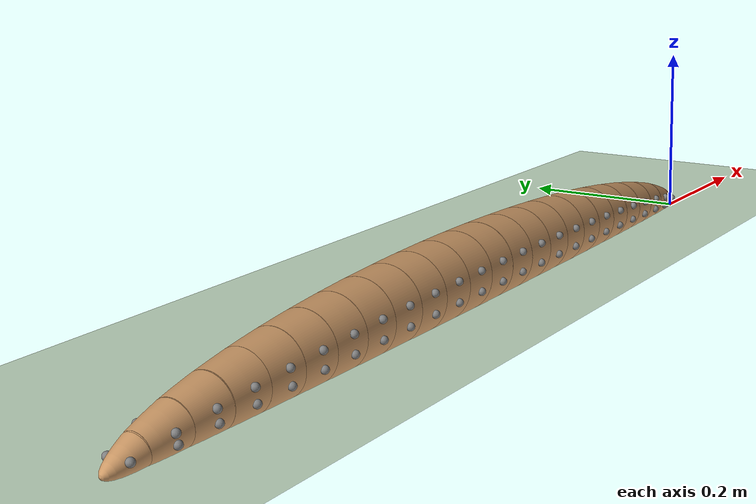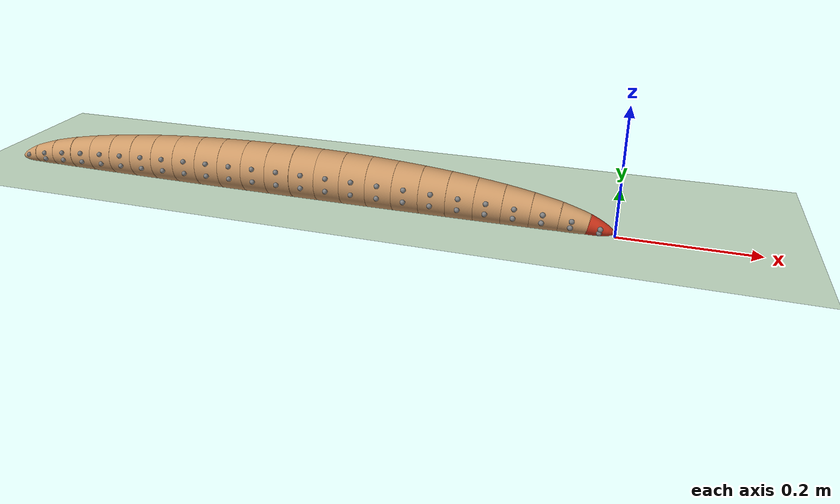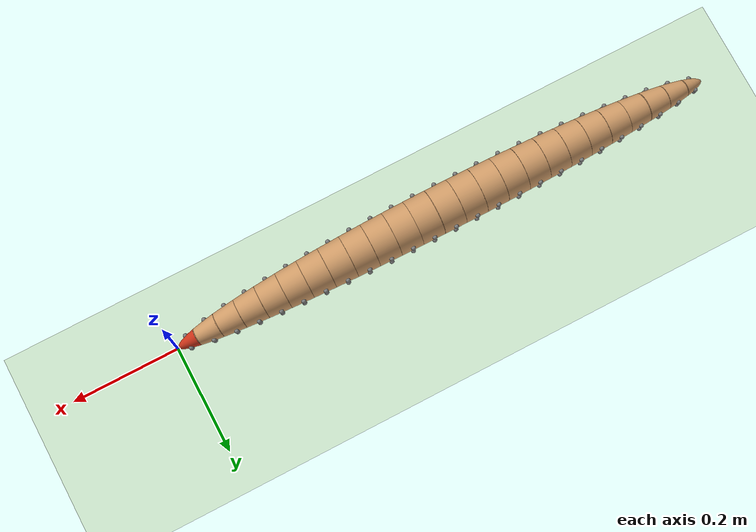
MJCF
<?xml version='1.0' encoding='utf-8'?>
<mujoco model="celegans">
  <visual>
    <quality shadowsize="2048" />
    <global offwidth="1920" offheight="1200" elevation="-20" azimuth="120" />
  </visual>
  <compiler angle="degree" coordinate="local" inertiafromgeom="true" meshdir="./meshes" />
  <option density="1.2" solver="CG" iterations="6" ls_iterations="6" timestep="0.002" viscosity="0.1" cone="pyramidal" />
  <default>
    <geom conaffinity="1" condim="1" contype="1" material="geom" rgba="0.8 0.6 .4 1" />
    <joint armature="0.1" />
    <site type="sphere" size="0.00416572" />
    <muscle ctrllimited="true" ctrlrange="0 1" />
  </default>
  <asset>
    <texture builtin="gradient" height="100" rgb1="1 1 1" rgb2="0 0 0" type="skybox" width="100" />
    <texture builtin="flat" height="1278" mark="cross" markrgb="1 1 1" name="texgeom" random="0.01" rgb1="0.8 0.6 0.4" rgb2="0.8 0.6 0.4" type="cube" width="127" />
    <texture builtin="checker" height="100" name="texplane" rgb1="0 0 0" rgb2="0.8 0.8 0.8" type="2d" width="100" />
    <material name="MatPlane" reflectance="0.5" shininess="1" specular="1" texrepeat="30 30" texture="texplane" />
    <material name="geom" texture="texgeom" texuniform="true" />
    <mesh name="ellipsoid1" file="Ellipsoid.001.stl" refpos="1.25 0 0" refquat="1.0 0.0 0 0" scale="0.416572 0.416572 0.416572" />
    <mesh name="ellipsoid2" file="Ellipsoid.002.stl" refpos="1.1574074074074074 0 0" refquat="1.0 0.0 0 0" scale="0.416572 0.416572 0.416572" />
    <mesh name="ellipsoid3" file="Ellipsoid.003.stl" refpos="1.0567632850241546 0 0" refquat="0.9393937941349282 0.3428400494994482 0 0" scale="0.416572 0.416572 0.416572" />
    <mesh name="ellipsoid4" file="Ellipsoid.004.stl" refpos="0.9561191626409018 0 0" refquat="1.0 0.0 0 0" scale="0.416572 0.416572 0.416572" />
    <mesh name="ellipsoid5" file="Ellipsoid.005.stl" refpos="0.855475040257649 0 0" refquat="1.0 0.0 0 0" scale="0.416572 0.416572 0.416572" />
    <mesh name="ellipsoid6" file="Ellipsoid.006.stl" refpos="0.7548309178743962 0 0" refquat="1.0 0.0 0 0" scale="0.416572 0.416572 0.416572" />
    <mesh name="ellipsoid7" file="Ellipsoid.007.stl" refpos="0.6541867954911433 0 0" refquat="0.9238795325112867 0.3826834323650898 0 0" scale="0.416572 0.416572 0.416572" />
    <mesh name="ellipsoid8" file="Ellipsoid.008.stl" refpos="0.5535426731078905 0 0" refquat="0.9238795325112867 0.3826834323650898 0 0" scale="0.416572 0.416572 0.416572" />
    <mesh name="ellipsoid9" file="Ellipsoid.009.stl" refpos="0.45289855072463775 0 0" refquat="0.984807753012208 0.17364817766693033 0 0" scale="0.416572 0.416572 0.416572" />
    <mesh name="ellipsoid10" file="Ellipsoid.010.stl" refpos="0.35225442834138493 0 0" refquat="0.9271838545667874 0.374606593415912 0 0" scale="0.416572 0.416572 0.416572" />
    <mesh name="ellipsoid11" file="Ellipsoid.011.stl" refpos="0.25161030595813205 0 0" refquat="1.0 0.0 0 0" scale="0.416572 0.416572 0.416572" />
    <mesh name="ellipsoid12" file="Ellipsoid.012.stl" refpos="0.15096618357487912 0 0" refquat="0.9238795325112867 0.3826834323650898 0 0" scale="0.416572 0.416572 0.416572" />
    <mesh name="ellipsoid13" file="Ellipsoid.013.stl" refpos="0.05032206119162645 0 0" refquat="0.9238795325112867 0.3826834323650898 0 0" scale="0.416572 0.416572 0.416572" />
    <mesh name="ellipsoid14" file="Ellipsoid.014.stl" refpos="-0.05032206119162645 0 0" refquat="0.9238795325112867 0.3826834323650898 0 0" scale="0.416572 0.416572 0.416572" />
    <mesh name="ellipsoid15" file="Ellipsoid.015.stl" refpos="-0.15096618357487912 0 0" refquat="1.0 0.0 0 0" scale="0.416572 0.416572 0.416572" />
    <mesh name="ellipsoid16" file="Ellipsoid.016.stl" refpos="-0.25161030595813205 0 0" refquat="0.9238795325112867 0.3826834323650898 0 0" scale="0.416572 0.416572 0.416572" />
    <mesh name="ellipsoid17" file="Ellipsoid.017.stl" refpos="-0.35225442834138493 0 0" refquat="1.0 0.0 0 0" scale="0.416572 0.416572 0.416572" />
    <mesh name="ellipsoid18" file="Ellipsoid.018.stl" refpos="-0.45289855072463764 0 0" refquat="0.9238795325112867 0.3826834323650898 0 0" scale="0.416572 0.416572 0.416572" />
    <mesh name="ellipsoid19" file="Ellipsoid.019.stl" refpos="-0.5535426731078905 0 0" refquat="0.9238795325112867 0.3826834323650898 0 0" scale="0.416572 0.416572 0.416572" />
    <mesh name="ellipsoid20" file="Ellipsoid.020.stl" refpos="-0.6541867954911432 0 0" refquat="1.0 0.0 0 0" scale="0.416572 0.416572 0.416572" />
    <mesh name="ellipsoid21" file="Ellipsoid.021.stl" refpos="-0.7548309178743962 0 0" refquat="0.9238795325112867 0.3826834323650898 0 0" scale="0.416572 0.416572 0.416572" />
    <mesh name="ellipsoid22" file="Ellipsoid.022.stl" refpos="-0.855475040257649 0 0" refquat="1.0 0.0 0 0" scale="0.416572 0.416572 0.416572" />
    <mesh name="ellipsoid23" file="Ellipsoid.023.stl" refpos="-0.9561191626409019 0 0" refquat="0.9222009716704518 0.3867109616368206 0 0" scale="0.416572 0.416572 0.416572" />
    <mesh name="ellipsoid24" file="Ellipsoid.024.stl" refpos="-1.0567632850241548 0 0" refquat="0.9238795325112867 0.3826834323650898 0 0" scale="0.416572 0.416572 0.416572" />
    <mesh name="ellipsoid25" file="Ellipsoid.025.stl" refpos="-1.1574074074074072 0 0" refquat="1.0 0.0 0 0" scale="0.416572 0.416572 0.416572" />
  </asset>
  <worldbody>
    <camera name="fixedcam" mode="fixed" pos="0 0 20.8286" xyaxes="1 0 0 0 1 0" />
     <camera name="fixedcam2" mode="trackcom" pos="4.16572e-05 4.16572e-05 0.000416572" xyaxes="1 0 0 0 1 0" />
    <light cutoff="100" diffuse="1 1 1" dir="-0 0 -0.541544" directional="true" exponent="1" pos="0 0 0.541544" specular=".1 .1 .1" />
    <body name="floor">
      <geom conaffinity="1" condim="3" material="MatPlane" name="floor" pos="0 0 0" rgba="0.8 0.9 0.8 1" size="16.6629 16.6629 0.0416572" type="plane" />
    </body>
    <body name="torso1_body" pos="-0.00190215 -0 0.00647716">
      <camera name="track" mode="trackcom" pos="-0.520715 0 2.08286" xyaxes="1 0 0 0 1 0" />
      <camera name="close_profile" mode="trackcom" pos="0.208286 -0.208286 0.208286" xyaxes="1 1 0 -1 1 2" />
      <camera name="back" mode="trackcom" pos="-0.416572 0 0.208286" xyaxes="0 -1 0 1 0 2" />
      <camera name="side" mode="trackcom" pos="0 -0.416572 0.208286" xyaxes="1 0 0 0 1 2" />
      <camera name="side_alt" mode="trackcom" pos="0.208286 -0.233697 0.0828978" xyaxes="0.766 0.643 0.000 -0.162 0.192 0.968" />
      <camera name="top" mode="trackcom" fovy="100.0" pos="0 0 0.416572" zaxis="0 -0.2 1" />
      <geom density="1000" type="mesh" rgba="0.8 0.2 0.1 1" name="torso1" mesh="ellipsoid1" quat="0.99267578125 0.0 0.11907958984375 0.0" />
      <freejoint name="root" />
      <site name="sidesite1_central" pos="0 0 0" size="0.00416572" rgba="0.8 0.2 0.1 1.0" />
      <site name="site_anterior_dbwml1" pos="-0.0209506 0.011664 0.00198955" />
      <site name="site_anterior_dbwmr1" pos="-0.0195141 0.011664 0.00786285" />
      <site name="site_anterior_vbwml1" pos="-0.0209506 -0.011664 0.00198955" />
      <site name="site_anterior_vbwmr1" pos="-0.0195141 -0.011664 0.00786285" />
      <body name="torso2_body" pos="-0.0374264 0 0.00937567">
        <geom density="1000" type="mesh" name="torso2" mesh="ellipsoid2" quat="0.9970703125 0.0 0.07611083984375 0.0" />
        <joint axis="0 0 1" limited="true" name="motor1_rot" pos="-0.00305106 0 0.000470372" range="-70 70" type="hinge" />
        <geom name="geom2" pos="-0.00305106 0 0.000470372" size="0.0160339" type="sphere" density="0" />
        <site name="sidesite2_central" pos="-0.00305106 0 0.000470372" rgba="0.8 0.2 0.1 1.0" />
        <site name="sidesite2_dorsal" pos="-0.00305106 0.0160308 0.000470372" rgba="0.8 0.2 0.1 0" />
        <site name="sidesite2_ventral" pos="-0.00305106 -0.0160308 0.000470372" rgba="0.8 0.2 0.1 0" />
        <site name="site_posterior_dbwml1" pos="-0.0244339 0.0197811 -0.00142383" />
        <site name="site_posterior_dbwmr1" pos="-0.0228576 0.0197811 0.00869553" />
        <site name="site_posterior_vbwml1" pos="-0.0244339 -0.0197811 -0.00142383" />
        <site name="site_posterior_vbwmr1" pos="-0.0228576 -0.0197811 0.00869553" />
        <site name="site_anterior_dbwml2" pos="-0.0244339 0.0197811 -0.00142383" />
        <site name="site_anterior_dbwmr2" pos="-0.0228576 0.0197811 0.00869553" />
        <site name="site_anterior_vbwml2" pos="-0.0244339 -0.0197811 -0.00142383" />
        <site name="site_anterior_vbwmr2" pos="-0.0228576 -0.0197811 0.00869553" />
        <body name="torso3_body" pos="-0.0414182 0 0.00649622">
          <geom density="1000" type="mesh" name="torso3" mesh="ellipsoid3" quat="0.99853515625 0.0 0.052459716796875 0.0" />
          <joint axis="0 0 1" limited="true" name="motor2_rot" pos="-0.00279681 0 0.000305106" range="-100 100" type="hinge" />
          <geom name="geom3" pos="-0.00279681 0 0.000305106" size="0.0224275" type="sphere" density="0" />
          <site name="sidesite3_central" pos="-0.00279681 0 0.000305106" rgba="0.8 0.2 0.1 1.0" />
          <site name="sidesite3_dorsal" pos="-0.00279681 0.0224253 0.000305106" rgba="0.8 0.2 0.1 0" />
          <site name="sidesite3_ventral" pos="-0.00279681 -0.0224253 0.000305106" rgba="0.8 0.2 0.1 0" />
          <site name="site_posterior_dbwml2" pos="-0.0242051 0.0249933 -0.00395367" />
          <site name="site_posterior_dbwmr2" pos="-0.0228321 0.0249933 0.00892436" />
          <site name="site_posterior_vbwml2" pos="-0.0242051 -0.0249933 -0.00395367" />
          <site name="site_posterior_vbwmr2" pos="-0.0228321 -0.0249933 0.00892436" />
          <site name="site_anterior_dbwml3" pos="-0.0242051 0.0249933 -0.00395367" />
          <site name="site_anterior_dbwmr3" pos="-0.0228321 0.0249933 0.00892436" />
          <site name="site_anterior_vbwml3" pos="-0.0242051 -0.0249933 -0.00395367" />
          <site name="site_anterior_vbwmr3" pos="-0.0228321 -0.0249933 0.00892436" />
          <body name="torso4_body" pos="-0.0416979 0 0.00444947">
            <geom density="1000" type="mesh" name="torso4" mesh="ellipsoid4" quat="0.9990234375 0.0 0.0419921875 0.0" />
            <joint axis="0 0 1" limited="true" name="rot4" pos="-0.00254255 0 0.000203404" range="-100 100" type="hinge" />
            <geom name="geom4" pos="-0.00254255 0 0.000203404" size="0.0269545" type="sphere" density="0" />
            <site name="sidesite4_central" pos="-0.00254255 0 0.000203404" rgba="0.8 0.2 0.1 1.0" />
            <site name="sidesite4_dorsal" pos="-0.00254255 0.0269511 0.000203404" rgba="0.8 0.2 0.1 0" />
            <site name="sidesite4_ventral" pos="-0.00254255 -0.0269511 0.000203404" rgba="0.8 0.2 0.1 0" />
            <site name="site_posterior_dbwml3" pos="-0.0239 0.0289088 -0.00549192" />
            <site name="site_posterior_dbwmr3" pos="-0.0226796 0.0289088 0.00940745" />
            <site name="site_posterior_vbwml3" pos="-0.0239 -0.0289088 -0.00549192" />
            <site name="site_posterior_vbwmr3" pos="-0.0226796 -0.0289088 0.00940745" />
            <site name="site_anterior_dbwml4" pos="-0.0239 0.0289088 -0.00549192" />
            <site name="site_anterior_dbwmr4" pos="-0.0226796 0.0289088 0.00940745" />
            <site name="site_anterior_vbwml4" pos="-0.0239 -0.0289088 -0.00549192" />
            <site name="site_anterior_vbwmr4" pos="-0.0226796 -0.0289088 0.00940745" />
            <body name="torso5_body" pos="-0.0417996 0 0.00355958">
              <geom density="1000" type="mesh" name="torso5" mesh="ellipsoid5" quat="0.99951171875 0.0 0.033447265625 0.0" />
              <joint axis="0 0 1" limited="true" name="rot5" pos="-0.00223745 0 0.000152553" range="-100 100" type="hinge" />
              <geom name="geom5" pos="-0.00223745 0 0.000152553" size="0.0304588" type="sphere" density="0" />
              <site name="sidesite5_central" pos="-0.00223745 0 0.000152553" rgba="0.8 0.2 0.1 1.0" />
              <site name="sidesite5_dorsal" pos="-0.00223745 0.0304598 0.000152553" rgba="0.8 0.2 0.1 0" />
              <site name="sidesite5_ventral" pos="-0.00223745 -0.0304598 0.000152553" rgba="0.8 0.2 0.1 0" />
              <site name="site_posterior_dbwml4" pos="-0.0235949 0.0320108 -0.00672505" />
              <site name="site_posterior_dbwmr4" pos="-0.0224762 0.0320108 0.00981426" />
              <site name="site_posterior_vbwml4" pos="-0.0235949 -0.0320108 -0.00672505" />
              <site name="site_posterior_vbwmr4" pos="-0.0224762 -0.0320108 0.00981426" />
              <site name="site_anterior_dbwml5" pos="-0.0235949 0.0320108 -0.00672505" />
              <site name="site_anterior_dbwmr5" pos="-0.0224762 0.0320108 0.00981426" />
              <site name="site_anterior_vbwml5" pos="-0.0235949 -0.0320108 -0.00672505" />
              <site name="site_anterior_vbwmr5" pos="-0.0224762 -0.0320108 0.00981426" />
              <body name="torso6_body" pos="-0.0417996 0 0.00282223">
                <geom density="1000" type="mesh" name="torso6" mesh="ellipsoid6" quat="0.99951171875 0.0 0.0270233154296875 0.0" />
                <joint axis="0 0 1" limited="true" name="rot6" pos="-0.00203404 0 0.000101702" range="-100 100" type="hinge" />
                <geom name="geom6" pos="-0.00203404 0 0.000101702" size="0.0332653" type="sphere" density="0" />
                <site name="sidesite6_central" pos="-0.00203404 0 0.000101702" rgba="0.8 0.2 0.1 1.0" />
                <site name="sidesite6_dorsal" pos="-0.00203404 0.0332566 0.000101702" rgba="0.8 0.2 0.1 0" />
                <site name="sidesite6_ventral" pos="-0.00203404 -0.0332566 0.000101702" rgba="0.8 0.2 0.1 0" />
                <site name="site_posterior_dbwml5" pos="-0.0231881 0.0345025 -0.00767851" />
                <site name="site_posterior_dbwmr5" pos="-0.0223745 0.0345025 0.0101448" />
                <site name="site_posterior_vbwml5" pos="-0.0231881 -0.0345025 -0.00767851" />
                <site name="site_posterior_vbwmr5" pos="-0.0223745 -0.0345025 0.0101448" />
                <site name="site_anterior_dbwml6" pos="-0.0231881 0.0345025 -0.00767851" />
                <site name="site_anterior_dbwmr6" pos="-0.0223745 0.0345025 0.0101448" />
                <site name="site_anterior_vbwml6" pos="-0.0231881 -0.0345025 -0.00767851" />
                <site name="site_anterior_vbwmr6" pos="-0.0223745 -0.0345025 0.0101448" />
                <body name="torso7_body" pos="-0.0419013 0 0.0022883">
                  <geom density="1000" type="mesh" name="torso7" mesh="ellipsoid7" quat="1.0 0.0 0.0220489501953125 0.0" />
                  <joint axis="0 0 1" limited="true" name="rot7" pos="-0.00162723 0 7.62766e-05" range="-100 100" type="hinge" />
                  <geom name="geom7" pos="-0.00162723 0 7.62766e-05" size="0.0355397" type="sphere" density="0" />
                  <site name="sidesite7_central" pos="-0.00162723 0 7.62766e-05" rgba="0.8 0.2 0.1 1.0" />
                  <site name="sidesite7_dorsal" pos="-0.00162723 0.0355449 7.62766e-05" rgba="0.8 0.2 0.1 0" />
                  <site name="sidesite7_ventral" pos="-0.00162723 -0.0355449 7.62766e-05" rgba="0.8 0.2 0.1 0" />
                  <site name="site_posterior_dbwml6" pos="-0.0229847 0.0365365 -0.0084667" />
                  <site name="site_posterior_dbwmr6" pos="-0.0221711 0.0365365 0.0104499" />
                  <site name="site_posterior_vbwml6" pos="-0.0229847 -0.0365365 -0.0084667" />
                  <site name="site_posterior_vbwmr6" pos="-0.0221711 -0.0365365 0.0104499" />
                  <site name="site_anterior_dbwml7" pos="-0.0229847 0.0365365 -0.0084667" />
                  <site name="site_anterior_dbwmr7" pos="-0.0221711 0.0365365 0.0104499" />
                  <site name="site_anterior_vbwml7" pos="-0.0229847 -0.0365365 -0.0084667" />
                  <site name="site_anterior_vbwmr7" pos="-0.0221711 -0.0365365 0.0104499" />
                  <body name="torso8_body" pos="-0.0419013 0 0.00185606">
                    <geom density="1000" type="mesh" name="torso8" mesh="ellipsoid8" quat="1.0 0.0 0.0172576904296875 0.0" />
                    <joint axis="0 0 1" limited="true" name="rot8" pos="-0.00142383 0 5.08511e-05" range="-100 100" type="hinge" />
                    <geom name="geom8" pos="-0.00142383 0 5.08511e-05" size="0.0373791" type="sphere" density="0" />
                    <site name="sidesite8_central" pos="-0.00142383 0 5.08511e-05" rgba="0.8 0.2 0.1 1.0" />
                    <site name="sidesite8_dorsal" pos="-0.00142383 0.0373755 5.08511e-05" rgba="0.8 0.2 0.1 0" />
                    <site name="sidesite8_ventral" pos="-0.00142383 -0.0373755 5.08511e-05" rgba="0.8 0.2 0.1 0" />
                    <site name="site_posterior_dbwml7" pos="-0.0225779 0.0381892 -0.00910234" />
                    <site name="site_posterior_dbwmr7" pos="-0.0219677 0.0381892 0.0106533" />
                    <site name="site_posterior_vbwml7" pos="-0.0225779 -0.0381892 -0.00910234" />
                    <site name="site_posterior_vbwmr7" pos="-0.0219677 -0.0381892 0.0106533" />
                    <site name="site_anterior_dbwml8" pos="-0.0225779 0.0381892 -0.00910234" />
                    <site name="site_anterior_dbwmr8" pos="-0.0219677 0.0381892 0.0106533" />
                    <site name="site_anterior_vbwml8" pos="-0.0225779 -0.0381892 -0.00910234" />
                    <site name="site_anterior_vbwmr8" pos="-0.0219677 -0.0381892 0.0106533" />
                    <body name="torso9_body" pos="-0.0419013 0 0.00144926">
                      <geom density="1000" type="mesh" name="torso9" mesh="ellipsoid9" quat="1.0 0.0 0.013885498046875 0.0" />
                      <joint axis="0 0 1" limited="true" name="rot9" pos="-0.00122043 0 5.08511e-05" range="-100 100" type="hinge" />
                      <geom name="geom9" pos="-0.00122043 0 5.08511e-05" size="0.0388455" type="sphere" density="0" />
                      <site name="sidesite9_central" pos="-0.00122043 0 5.08511e-05" rgba="0.8 0.2 0.1 1.0" />
                      <site name="sidesite9_dorsal" pos="-0.00122043 0.0388502 5.08511e-05" rgba="0.8 0.2 0.1 0" />
                      <site name="sidesite9_ventral" pos="-0.00122043 -0.0388502 5.08511e-05" rgba="0.8 0.2 0.1 0" />
                      <site name="site_posterior_dbwml8" pos="-0.0221711 0.0394604 -0.00958543" />
                      <site name="site_posterior_dbwmr8" pos="-0.0217643 0.0394604 0.0108313" />
                      <site name="site_posterior_vbwml8" pos="-0.0221711 -0.0394604 -0.00958543" />
                      <site name="site_posterior_vbwmr8" pos="-0.0217643 -0.0394604 0.0108313" />
                      <site name="site_anterior_dbwml9" pos="-0.0221711 0.0394604 -0.00958543" />
                      <site name="site_anterior_dbwmr9" pos="-0.0217643 0.0394604 0.0108313" />
                      <site name="site_anterior_vbwml9" pos="-0.0221711 -0.0394604 -0.00958543" />
                      <site name="site_anterior_vbwmr9" pos="-0.0217643 -0.0394604 0.0108313" />
                      <body name="torso10_body" pos="-0.0419013 0 0.00116957">
                        <geom density="1000" type="mesh" name="torso10" mesh="ellipsoid10" quat="1.0 0.0 0.0099334716796875 0.0" />
                        <joint axis="0 0 1" limited="true" name="rot10" pos="-0.000813617 0 2.54255e-05" range="-100 100" type="hinge" />
                        <geom name="geom10" pos="-0.000813617 0 2.54255e-05" size="0.03998" type="sphere" density="0" />
                        <site name="sidesite10_central" pos="-0.000813617 0 2.54255e-05" rgba="0.8 0.2 0.1 1.0" />
                        <site name="sidesite10_dorsal" pos="-0.000813617 0.0399689 2.54255e-05" rgba="0.8 0.2 0.1 0" />
                        <site name="sidesite10_ventral" pos="-0.000813617 -0.0399689 2.54255e-05" rgba="0.8 0.2 0.1 0" />
                        <site name="site_posterior_dbwml9" pos="-0.0219677 0.040452 -0.0100177" />
                        <site name="site_posterior_dbwmr9" pos="-0.0215609 0.040452 0.0109076" />
                        <site name="site_posterior_vbwml9" pos="-0.0219677 -0.040452 -0.0100177" />
                        <site name="site_posterior_vbwmr9" pos="-0.0215609 -0.040452 0.0109076" />
                        <site name="site_anterior_dbwml10" pos="-0.0219677 0.040452 -0.0100177" />
                        <site name="site_anterior_dbwmr10" pos="-0.0215609 0.040452 0.0109076" />
                        <site name="site_anterior_vbwml10" pos="-0.0219677 -0.040452 -0.0100177" />
                        <site name="site_anterior_vbwmr10" pos="-0.0215609 -0.040452 0.0109076" />
                        <body name="torso11_body" pos="-0.0419013 0 0.000839043">
                          <geom density="1000" type="mesh" name="torso11" mesh="ellipsoid11" quat="1.0 0.0 0.0063323974609375 0.0" />
                          <joint axis="0 0 1" limited="true" name="rot11" pos="-0.000610213 0 2.54255e-05" range="-100 100" type="hinge" />
                          <geom name="geom11" pos="-0.000610213 0 2.54255e-05" size="0.0408101" type="sphere" density="0" />
                          <site name="sidesite11_central" pos="-0.000610213 0 2.54255e-05" rgba="0.8 0.2 0.1 1.0" />
                          <site name="sidesite11_dorsal" pos="-0.000610213 0.040808 2.54255e-05" rgba="0.8 0.2 0.1 0" />
                          <site name="sidesite11_ventral" pos="-0.000610213 -0.040808 2.54255e-05" rgba="0.8 0.2 0.1 0" />
                          <site name="site_posterior_dbwml10" pos="-0.0217643 0.0411131 -0.0103482" />
                          <site name="site_posterior_dbwmr10" pos="-0.0213575 0.0411131 0.010933" />
                          <site name="site_posterior_vbwml10" pos="-0.0217643 -0.0411131 -0.0103482" />
                          <site name="site_posterior_vbwmr10" pos="-0.0213575 -0.0411131 0.010933" />
                          <site name="site_anterior_dbwml11" pos="-0.0217643 0.0411131 -0.0103482" />
                          <site name="site_anterior_dbwmr11" pos="-0.0213575 0.0411131 0.010933" />
                          <site name="site_anterior_vbwml11" pos="-0.0217643 -0.0411131 -0.0103482" />
                          <site name="site_anterior_vbwmr11" pos="-0.0213575 -0.0411131 0.010933" />
                          <body name="torso12_body" pos="-0.0416979 0 0.000533936">
                            <geom density="1000" type="mesh" name="torso12" mesh="ellipsoid12" quat="1.0 0.0 0.0032062530517578125 0.0" />
                            <joint axis="0 0 1" limited="true" name="rot12" pos="-0.000406809 0 0" range="-100 100" type="hinge" />
                            <geom name="geom12" pos="-0.000406809 0 0" size="0.0413542" type="sphere" density="0" />
                            <site name="sidesite12_central" pos="-0.000406809 0 0" rgba="0.8 0.2 0.1 1.0" />
                            <site name="sidesite12_dorsal" pos="-0.000406809 0.0413419 0" rgba="0.8 0.2 0.1 0" />
                            <site name="sidesite12_ventral" pos="-0.000406809 -0.0413419 0" rgba="0.8 0.2 0.1 0" />
                            <site name="site_posterior_dbwml11" pos="-0.0215609 0.0415199 -0.0106024" />
                            <site name="site_posterior_dbwmr11" pos="-0.021154 0.0415199 0.0109076" />
                            <site name="site_posterior_vbwml11" pos="-0.0215609 -0.0415199 -0.0106024" />
                            <site name="site_posterior_vbwmr11" pos="-0.021154 -0.0415199 0.0109076" />
                            <site name="site_anterior_dbwml12" pos="-0.0215609 0.0415199 -0.0106024" />
                            <site name="site_anterior_dbwmr12" pos="-0.021154 0.0415199 0.0109076" />
                            <site name="site_anterior_vbwml12" pos="-0.0215609 -0.0415199 -0.0106024" />
                            <site name="site_anterior_vbwmr12" pos="-0.021154 -0.0415199 0.0109076" />
                            <body name="torso13_body" pos="-0.0423081 0 0.000279681">
                              <geom density="1000" type="mesh" name="torso13" mesh="ellipsoid13" quat="1.0 0.0 -8.404254913330078e-06 0.0" />
                              <joint axis="0 0 1" limited="true" name="rot13" pos="0 0 0" range="-100 100" type="hinge" />
                              <geom name="geom13" pos="0 0 0" size="0.0416236" type="sphere" density="0" />
                              <site name="sidesite13_central" pos="0 0 0" rgba="0.8 0.2 0.1 1.0" />
                              <site name="sidesite13_dorsal" pos="0 0.0416216 0" rgba="0.8 0.2 0.1 0" />
                              <site name="sidesite13_ventral" pos="0 -0.0416216 0" rgba="0.8 0.2 0.1 0" />
                              <site name="site_posterior_dbwml12" pos="-0.0207472 0.041647 -0.0107804" />
                              <site name="site_posterior_dbwmr12" pos="-0.0207472 0.041647 0.0107804" />
                              <site name="site_posterior_vbwml12" pos="-0.0207472 -0.041647 -0.0107804" />
                              <site name="site_posterior_vbwmr12" pos="-0.0207472 -0.041647 0.0107804" />
                              <site name="site_anterior_dbwml13" pos="-0.0207472 0.041647 -0.0107804" />
                              <site name="site_anterior_dbwmr13" pos="-0.0207472 0.041647 0.0107804" />
                              <site name="site_anterior_vbwml13" pos="-0.0207472 -0.041647 -0.0107804" />
                              <site name="site_anterior_vbwmr13" pos="-0.0207472 -0.041647 0.0107804" />
                              <body name="torso14_body" pos="-0.0419013 0 0">
                                <geom density="1000" type="mesh" name="torso14" mesh="ellipsoid14" quat="1.0 0.0 -0.003177642822265625 0.0" />
                                <joint axis="0 0 1" limited="true" name="rot14" pos="0.000406809 0 0" range="-100 100" type="hinge" />
                                <geom name="geom14" pos="0.000406809 0 0" size="0.0416236" type="sphere" density="0" />
                                <site name="sidesite14_central" pos="0.000406809 0 0" rgba="0.8 0.2 0.1 1.0" />
                                <site name="sidesite14_dorsal" pos="0.000406809 0.0416216 0" rgba="0.8 0.2 0.1 0" />
                                <site name="sidesite14_ventral" pos="0.000406809 -0.0416216 0" rgba="0.8 0.2 0.1 0" />
                                <site name="site_posterior_dbwml13" pos="-0.0203404 0.0415199 -0.0108821" />
                                <site name="site_posterior_dbwmr13" pos="-0.0207472 0.0415199 0.0106279" />
                                <site name="site_posterior_vbwml13" pos="-0.0203404 -0.0415199 -0.0108821" />
                                <site name="site_posterior_vbwmr13" pos="-0.0207472 -0.0415199 0.0106279" />
                                <site name="site_anterior_dbwml14" pos="-0.0203404 0.0415199 -0.0108821" />
                                <site name="site_anterior_dbwmr14" pos="-0.0207472 0.0415199 0.0106279" />
                                <site name="site_anterior_vbwml14" pos="-0.0203404 -0.0415199 -0.0108821" />
                                <site name="site_anterior_vbwmr14" pos="-0.0207472 -0.0415199 0.0106279" />
                                <body name="torso15_body" pos="-0.0419013 0 -0.000279681">
                                  <geom density="1000" type="mesh" name="torso15" mesh="ellipsoid15" quat="1.0 0.0 -0.006458282470703125 0.0" />
                                  <joint axis="0 0 1" limited="true" name="rot15" pos="0.000406809 0 2.54255e-05" range="-100 100" type="hinge" />
                                  <geom name="geom15" pos="0.000406809 0 2.54255e-05" size="0.0413542" type="sphere" density="0" />
                                  <site name="sidesite15_central" pos="0.000406809 0 2.54255e-05" rgba="0.8 0.2 0.1 1.0" />
                                  <site name="sidesite15_dorsal" pos="0.000406809 0.0413419 2.54255e-05" rgba="0.8 0.2 0.1 0" />
                                  <site name="sidesite15_ventral" pos="0.000406809 -0.0413419 2.54255e-05" rgba="0.8 0.2 0.1 0" />
                                  <site name="site_posterior_dbwml14" pos="-0.0203404 0.0411131 -0.0109076" />
                                  <site name="site_posterior_dbwmr14" pos="-0.0203404 0.0411131 0.010399" />
                                  <site name="site_posterior_vbwml14" pos="-0.0203404 -0.0411131 -0.0109076" />
                                  <site name="site_posterior_vbwmr14" pos="-0.0203404 -0.0411131 0.010399" />
                                  <site name="site_anterior_dbwml15" pos="-0.0203404 0.0411131 -0.0109076" />
                                  <site name="site_anterior_dbwmr15" pos="-0.0203404 0.0411131 0.010399" />
                                  <site name="site_anterior_vbwml15" pos="-0.0203404 -0.0411131 -0.0109076" />
                                  <site name="site_anterior_vbwmr15" pos="-0.0203404 -0.0411131 0.010399" />
                                  <body name="torso16_body" pos="-0.0419013 0 -0.000533936">
                                    <geom density="1000" type="mesh" name="torso16" mesh="ellipsoid16" quat="1.0 0.0 -0.00980377197265625 0.0" />
                                    <joint axis="0 0 1" limited="true" name="rot16" pos="0.000813617 0 0" range="-100 100" type="hinge" />
                                    <geom name="geom16" pos="0.000813617 0 0" size="0.0408101" type="sphere" density="0" />
                                    <site name="sidesite16_central" pos="0.000813617 0 0" rgba="0.8 0.2 0.1 1.0" />
                                    <site name="sidesite16_dorsal" pos="0.000813617 0.040808 0" rgba="0.8 0.2 0.1 0" />
                                    <site name="sidesite16_ventral" pos="0.000813617 -0.040808 0" rgba="0.8 0.2 0.1 0" />
                                    <site name="site_posterior_dbwml15" pos="-0.0199336 0.040452 -0.0108567" />
                                    <site name="site_posterior_dbwmr15" pos="-0.0203404 0.040452 0.0100685" />
                                    <site name="site_posterior_vbwml15" pos="-0.0199336 -0.040452 -0.0108567" />
                                    <site name="site_posterior_vbwmr15" pos="-0.0203404 -0.040452 0.0100685" />
                                    <site name="site_anterior_dbwml16" pos="-0.0199336 0.040452 -0.0108567" />
                                    <site name="site_anterior_dbwmr16" pos="-0.0203404 0.040452 0.0100685" />
                                    <site name="site_anterior_vbwml16" pos="-0.0199336 -0.040452 -0.0108567" />
                                    <site name="site_anterior_vbwmr16" pos="-0.0203404 -0.040452 0.0100685" />
                                    <body name="torso17_body" pos="-0.0419013 0 -0.000839043">
                                      <geom density="1000" type="mesh" name="torso17" mesh="ellipsoid17" quat="1.0 0.0 -0.01375579833984375 0.0" />
                                      <joint axis="0 0 1" limited="true" name="rot17" pos="0.00122043 0 2.54255e-05" range="-100 100" type="hinge" />
                                      <geom name="geom17" pos="0.00122043 0 2.54255e-05" size="0.03998" type="sphere" density="0" />
                                      <site name="sidesite17_central" pos="0.00122043 0 2.54255e-05" rgba="0.8 0.2 0.1 1.0" />
                                      <site name="sidesite17_dorsal" pos="0.00122043 0.0399689 2.54255e-05" rgba="0.8 0.2 0.1 0" />
                                      <site name="sidesite17_ventral" pos="0.00122043 -0.0399689 2.54255e-05" rgba="0.8 0.2 0.1 0" />
                                      <site name="site_posterior_dbwml16" pos="-0.0195268 0.0394604 -0.010755" />
                                      <site name="site_posterior_dbwmr16" pos="-0.0199336 0.0394604 0.0096617" />
                                      <site name="site_posterior_vbwml16" pos="-0.0195268 -0.0394604 -0.010755" />
                                      <site name="site_posterior_vbwmr16" pos="-0.0199336 -0.0394604 0.0096617" />
                                      <site name="site_anterior_dbwml17" pos="-0.0195268 0.0394604 -0.010755" />
                                      <site name="site_anterior_dbwmr17" pos="-0.0199336 0.0394604 0.0096617" />
                                      <site name="site_anterior_vbwml17" pos="-0.0195268 -0.0394604 -0.010755" />
                                      <site name="site_anterior_vbwmr17" pos="-0.0199336 -0.0394604 0.0096617" />
                                      <body name="torso18_body" pos="-0.0419013 0 -0.00114415">
                                        <geom density="1000" type="mesh" name="torso18" mesh="ellipsoid18" quat="1.0 0.0 -0.0175933837890625 0.0" />
                                        <joint axis="0 0 1" limited="true" name="rot18" pos="0.00122043 0 2.54255e-05" range="-100 100" type="hinge" />
                                        <geom name="geom18" pos="0.00122043 0 2.54255e-05" size="0.0388455" type="sphere" density="0" />
                                        <site name="sidesite18_central" pos="0.00122043 0 2.54255e-05" rgba="0.8 0.2 0.1 1.0" />
                                        <site name="sidesite18_dorsal" pos="0.00122043 0.0388502 2.54255e-05" rgba="0.8 0.2 0.1 0" />
                                        <site name="sidesite18_ventral" pos="0.00122043 -0.0388502 2.54255e-05" rgba="0.8 0.2 0.1 0" />
                                        <site name="site_posterior_dbwml17" pos="-0.01912 0.0381892 -0.010577" />
                                        <site name="site_posterior_dbwmr17" pos="-0.0199336 0.0381892 0.00917862" />
                                        <site name="site_posterior_vbwml17" pos="-0.01912 -0.0381892 -0.010577" />
                                        <site name="site_posterior_vbwmr17" pos="-0.0199336 -0.0381892 0.00917862" />
                                        <site name="site_anterior_dbwml18" pos="-0.01912 0.0381892 -0.010577" />
                                        <site name="site_anterior_dbwmr18" pos="-0.0199336 0.0381892 0.00917862" />
                                        <site name="site_anterior_vbwml18" pos="-0.01912 -0.0381892 -0.010577" />
                                        <site name="site_anterior_vbwmr18" pos="-0.0199336 -0.0381892 0.00917862" />
                                        <body name="torso19_body" pos="-0.0419013 0 -0.00150011">
                                          <geom density="1000" type="mesh" name="torso19" mesh="ellipsoid19" quat="1.0 0.0 -0.0218353271484375 0.0" />
                                          <joint axis="0 0 1" limited="true" name="rot19" pos="0.00162723 0 7.62766e-05" range="-100 100" type="hinge" />
                                          <geom name="geom19" pos="0.00162723 0 7.62766e-05" size="0.0373791" type="sphere" density="0" />
                                          <site name="sidesite19_central" pos="0.00162723 0 7.62766e-05" rgba="0.8 0.2 0.1 1.0" />
                                          <site name="sidesite19_dorsal" pos="0.00162723 0.0373755 7.62766e-05" rgba="0.8 0.2 0.1 0" />
                                          <site name="sidesite19_ventral" pos="0.00162723 -0.0373755 7.62766e-05" rgba="0.8 0.2 0.1 0" />
                                          <site name="site_posterior_dbwml18" pos="-0.0187132 0.0365365 -0.0102973" />
                                          <site name="site_posterior_dbwmr18" pos="-0.0195268 0.0365365 0.00859383" />
                                          <site name="site_posterior_vbwml18" pos="-0.0187132 -0.0365365 -0.0102973" />
                                          <site name="site_posterior_vbwmr18" pos="-0.0195268 -0.0365365 0.00859383" />
                                          <site name="site_anterior_dbwml19" pos="-0.0187132 0.0365365 -0.0102973" />
                                          <site name="site_anterior_dbwmr19" pos="-0.0195268 0.0365365 0.00859383" />
                                          <site name="site_anterior_vbwml19" pos="-0.0187132 -0.0365365 -0.0102973" />
                                          <site name="site_anterior_vbwmr19" pos="-0.0195268 -0.0365365 0.00859383" />
                                          <body name="torso20_body" pos="-0.0419013 0 -0.00185606">
                                            <geom density="1000" type="mesh" name="torso20" mesh="ellipsoid20" quat="0.99951171875 0.0 -0.0270538330078125 0.0" />
                                            <joint axis="0 0 1" limited="true" name="rot20" pos="0.00203404 0 0.000101702" range="-100 100" type="hinge" />
                                            <geom name="geom20" pos="0.00203404 0 0.000101702" size="0.0355397" type="sphere" density="0" />
                                            <site name="sidesite20_central" pos="0.00203404 0 0.000101702" rgba="0.8 0.2 0.1 1.0" />
                                            <site name="sidesite20_dorsal" pos="0.00203404 0.0355449 0.000101702" rgba="0.8 0.2 0.1 0" />
                                            <site name="sidesite20_ventral" pos="0.00203404 -0.0355449 0.000101702" rgba="0.8 0.2 0.1 0" />
                                            <site name="site_posterior_dbwml19" pos="-0.0183064 0.0345025 -0.00994139" />
                                            <site name="site_posterior_dbwmr19" pos="-0.0195268 0.0345025 0.00788192" />
                                            <site name="site_posterior_vbwml19" pos="-0.0183064 -0.0345025 -0.00994139" />
                                            <site name="site_posterior_vbwmr19" pos="-0.0195268 -0.0345025 0.00788192" />
                                            <site name="site_anterior_dbwml20" pos="-0.0183064 0.0345025 -0.00994139" />
                                            <site name="site_anterior_dbwmr20" pos="-0.0195268 0.0345025 0.00788192" />
                                            <site name="site_anterior_vbwml20" pos="-0.0183064 -0.0345025 -0.00994139" />
                                            <site name="site_anterior_vbwmr20" pos="-0.0195268 -0.0345025 0.00788192" />
                                            <body name="torso21_body" pos="-0.0419013 0 -0.0022883">
                                              <geom density="1000" type="mesh" name="torso21" mesh="ellipsoid21" quat="0.99951171875 0.0 -0.033905029296875 0.0" />
                                              <joint axis="0 0 1" limited="true" name="rot21" pos="0.00203404 0 0.000127128" range="-100 100" type="hinge" />
                                              <geom name="geom21" pos="0.00203404 0 0.000127128" size="0.0332653" type="sphere" density="0" />
                                              <site name="sidesite21_central" pos="0.00203404 0 0.000127128" rgba="0.8 0.2 0.1 1.0" />
                                              <site name="sidesite21_dorsal" pos="0.00203404 0.0332566 0.000127128" rgba="0.8 0.2 0.1 0" />
                                              <site name="sidesite21_ventral" pos="0.00203404 -0.0332566 0.000127128" rgba="0.8 0.2 0.1 0" />
                                              <site name="site_posterior_dbwml20" pos="-0.0178996 0.0320108 -0.00953458" />
                                              <site name="site_posterior_dbwmr20" pos="-0.0195268 0.0320108 0.00699202" />
                                              <site name="site_posterior_vbwml20" pos="-0.0178996 -0.0320108 -0.00953458" />
                                              <site name="site_posterior_vbwmr20" pos="-0.0195268 -0.0320108 0.00699202" />
                                              <site name="site_anterior_dbwml21" pos="-0.0178996 0.0320108 -0.00953458" />
                                              <site name="site_anterior_dbwmr21" pos="-0.0195268 0.0320108 0.00699202" />
                                              <site name="site_anterior_vbwml21" pos="-0.0178996 -0.0320108 -0.00953458" />
                                              <site name="site_anterior_vbwmr21" pos="-0.0195268 -0.0320108 0.00699202" />
                                              <body name="torso22_body" pos="-0.0414945 0 -0.00287309">
                                                <geom density="1000" type="mesh" name="torso22" mesh="ellipsoid22" quat="0.9990234375 0.0 -0.041168212890625 0.0" />
                                                <joint axis="0 0 1" limited="true" name="rot22" pos="0.00244085 0 0.000177979" range="-100 100" type="hinge" />
                                                <geom name="geom22" pos="0.00244085 0 0.000177979" size="0.0304588" type="sphere" density="0" />
                                                <site name="sidesite22_central" pos="0.00244085 0 0.000177979" rgba="0.8 0.2 0.1 1.0" />
                                                <site name="sidesite22_dorsal" pos="0.00244085 0.0304598 0.000177979" rgba="0.8 0.2 0.1 0" />
                                                <site name="sidesite22_ventral" pos="0.00244085 -0.0304598 0.000177979" rgba="0.8 0.2 0.1 0" />
                                                <site name="site_posterior_dbwml21" pos="-0.0178996 0.0289088 -0.00898793" />
                                                <site name="site_posterior_dbwmr21" pos="-0.0195268 0.0289088 0.00592415" />
                                                <site name="site_posterior_vbwml21" pos="-0.0178996 -0.0289088 -0.00898793" />
                                                <site name="site_posterior_vbwmr21" pos="-0.0195268 -0.0289088 0.00592415" />
                                                <site name="site_anterior_dbwml22" pos="-0.0178996 0.0289088 -0.00898793" />
                                                <site name="site_anterior_dbwmr22" pos="-0.0195268 0.0289088 0.00592415" />
                                                <site name="site_anterior_vbwml22" pos="-0.0178996 -0.0289088 -0.00898793" />
                                                <site name="site_anterior_vbwmr22" pos="-0.0195268 -0.0289088 0.00592415" />
                                                <body name="torso23_body" pos="-0.0423081 0 -0.00350872">
                                                  <geom density="1000" type="mesh" name="torso23" mesh="ellipsoid23" quat="0.99853515625 0.0 -0.053253173828125 0.0" />
                                                  <joint axis="0 0 1" limited="true" name="rot23" pos="0.00325447 0 0.000279681" range="-100 100" type="hinge" />
                                                  <geom name="geom23" pos="0.00325447 0 0.000279681" size="0.0269545" type="sphere" density="0" />
                                                  <site name="sidesite23_central" pos="0.00325447 0 0.000279681" rgba="0.8 0.2 0.1 1.0" />
                                                  <site name="sidesite23_dorsal" pos="0.00325447 0.0269511 0.000279681" rgba="0.8 0.2 0.1 0" />
                                                  <site name="sidesite23_ventral" pos="0.00325447 -0.0269511 0.000279681" rgba="0.8 0.2 0.1 0" />
                                                  <site name="site_posterior_dbwml22" pos="-0.017086 0.0249933 -0.00837771" />
                                                  <site name="site_posterior_dbwmr22" pos="-0.0187132 0.0249933 0.00447489" />
                                                  <site name="site_posterior_vbwml22" pos="-0.017086 -0.0249933 -0.00837771" />
                                                  <site name="site_posterior_vbwmr22" pos="-0.0187132 -0.0249933 0.00447489" />
                                                  <site name="site_anterior_dbwml23" pos="-0.017086 0.0249933 -0.00837771" />
                                                  <site name="site_anterior_dbwmr23" pos="-0.0187132 0.0249933 0.00447489" />
                                                  <site name="site_anterior_vbwml23" pos="-0.017086 -0.0249933 -0.00837771" />
                                                  <site name="site_anterior_vbwmr23" pos="-0.0187132 -0.0249933 0.00447489" />
                                                  <body name="torso24_body" pos="-0.0414945 0 -0.00458931">
                                                    <geom density="1000" type="mesh" name="torso24" mesh="ellipsoid24" quat="0.9970703125 0.0 -0.0755615234375 0.0" />
                                                    <joint axis="0 0 1" limited="true" name="rot24" pos="0.00325447 0 0.000432234" range="-100 100" type="hinge" />
                                                    <geom name="geom24" pos="0.00325447 0 0.000432234" size="0.0224275" type="sphere" density="0" />
                                                    <site name="sidesite24_central" pos="0.00325447 0 0.000432234" rgba="0.8 0.2 0.1 1.0" />
                                                    <site name="sidesite24_dorsal" pos="0.00325447 0.0224253 0.000432234" rgba="0.8 0.2 0.1 0" />
                                                    <site name="sidesite24_ventral" pos="0.00325447 -0.0224253 0.000432234" rgba="0.8 0.2 0.1 0" />
                                                    <site name="site_posterior_dbwml23" pos="-0.017086 0.0197811 -0.00778021" />
                                                    <site name="site_posterior_dbwmr23" pos="-0.0187132 0.0197811 0.00235186" />
                                                    <site name="site_posterior_vbwml23" pos="-0.017086 -0.0197811 -0.00778021" />
                                                    <site name="site_posterior_vbwmr23" pos="-0.0187132 -0.0197811 0.00235186" />
                                                    <site name="site_anterior_dbwml24" pos="-0.017086 0.0197811 -0.00778021" />
                                                    <site name="site_anterior_dbwmr24" pos="-0.0187132 0.0197811 0.00235186" />
                                                    <site name="site_anterior_vbwmr24" pos="-0.0187132 -0.0197811 0.00235186" />
                                                    <body name="torso25_body" pos="-0.0414945 0 -0.00658521">
                                                      <geom density="1000" type="mesh" name="torso25" mesh="ellipsoid25" quat="0.99267578125 0.0 -0.1195068359375 0.0" />
                                                      <joint axis="0 0 1" limited="true" name="rot25" pos="0.00325447 0 0.000737341" range="-70 70" type="hinge" />
                                                      <site name="sidesite25_central" pos="0.00325447 0 0.000737341" rgba="0.8 0.2 0.1 1.0" />
                                                      <site name="sidesite25_dorsal" pos="0.00325447 0.0160308 0.000737341" rgba="0.8 0.2 0.1 0" />
                                                      <site name="sidesite25_ventral" pos="0.00325447 -0.0160308 0.000737341" rgba="0.8 0.2 0.1 0" />
                                                      <site name="site_posterior_dbwml24" pos="-0.0162723 0.011664 -0.00714458" />
                                                      <site name="site_posterior_dbwmr24" pos="-0.0178996 0.011664 -0.00128399" />
                                                      <site name="site_posterior_vbwmr24" pos="-0.0178996 -0.011664 -0.00128399" />
                                                      <geom name="geom25" pos="0.00325447 0 0.000737341" size="0.0160339" type="sphere" density="0" />
                                                    </body>
                                                  </body>
                                                </body>
                                              </body>
                                            </body>
                                          </body>
                                        </body>
                                      </body>
                                    </body>
                                  </body>
                                </body>
                              </body>
                            </body>
                          </body>
                        </body>
                      </body>
                    </body>
                  </body>
                </body>
              </body>
            </body>
          </body>
        </body>
      </body>
    </body>
  </worldbody>
  <contact>

    <exclude name="torso1_torso2" body1="torso1_body" body2="torso2_body"/>
    <exclude name="torso2_torso3" body1="torso2_body" body2="torso3_body"/>
    <exclude name="torso3_torso4" body1="torso3_body" body2="torso4_body"/>
    <exclude name="torso4_torso5" body1="torso4_body" body2="torso5_body"/>
    <exclude name="torso5_torso6" body1="torso5_body" body2="torso6_body"/>
    <exclude name="torso6_torso7" body1="torso6_body" body2="torso7_body"/>
    <exclude name="torso7_torso8" body1="torso7_body" body2="torso8_body"/>
    <exclude name="torso8_torso9" body1="torso8_body" body2="torso9_body"/>
    <exclude name="torso9_torso10" body1="torso9_body" body2="torso10_body"/>
    <exclude name="torso10_torso11" body1="torso10_body" body2="torso11_body"/>
    <exclude name="torso11_torso12" body1="torso11_body" body2="torso12_body"/>
    <exclude name="torso12_torso13" body1="torso12_body" body2="torso13_body"/>
    <exclude name="torso13_torso14" body1="torso13_body" body2="torso14_body"/>
    <exclude name="torso14_torso15" body1="torso14_body" body2="torso15_body"/>
    <exclude name="torso15_torso16" body1="torso15_body" body2="torso16_body"/>
    <exclude name="torso16_torso17" body1="torso16_body" body2="torso17_body"/>
    <exclude name="torso17_torso18" body1="torso17_body" body2="torso18_body"/>
    <exclude name="torso18_torso19" body1="torso18_body" body2="torso19_body"/>
    <exclude name="torso19_torso20" body1="torso19_body" body2="torso20_body"/>
    <exclude name="torso20_torso21" body1="torso20_body" body2="torso21_body"/>
    <exclude name="torso21_torso22" body1="torso21_body" body2="torso22_body"/>
    <exclude name="torso22_23" body1="torso22_body" body2="torso23_body"/>
    <exclude name="torso23_24" body1="torso23_body" body2="torso24_body"/>
    <exclude name="torso24_25" body1="torso24_body" body2="torso25_body"/>
  </contact>
  <actuator>
    <motor ctrllimited="true" ctrlrange="-1 1" gear="150.0" joint="motor1_rot"/>
    <motor ctrllimited="true" ctrlrange="-1 1" gear="150.0" joint="motor2_rot"/>
    <motor ctrllimited="true" ctrlrange="-1 1" gear="150.0" joint="rot4"/>
    <motor ctrllimited="true" ctrlrange="-1 1" gear="150.0" joint="rot5"/>
    <motor ctrllimited="true" ctrlrange="-1 1" gear="150.0" joint="rot6"/>
    <motor ctrllimited="true" ctrlrange="-1 1" gear="150.0" joint="rot7"/>
    <motor ctrllimited="true" ctrlrange="-1 1" gear="150.0" joint="rot8"/>
    <motor ctrllimited="true" ctrlrange="-1 1" gear="150.0" joint="rot9"/>
    <motor ctrllimited="true" ctrlrange="-1 1" gear="150.0" joint="rot10"/>
    <motor ctrllimited="true" ctrlrange="-1 1" gear="150.0" joint="rot11"/>
    <motor ctrllimited="true" ctrlrange="-1 1" gear="150.0" joint="rot12"/>
    <motor ctrllimited="true" ctrlrange="-1 1" gear="150.0" joint="rot13"/>
    <motor ctrllimited="true" ctrlrange="-1 1" gear="150.0" joint="rot14"/>
    <motor ctrllimited="true" ctrlrange="-1 1" gear="150.0" joint="rot15"/>
    <motor ctrllimited="true" ctrlrange="-1 1" gear="150.0" joint="rot16"/>
    <motor ctrllimited="true" ctrlrange="-1 1" gear="150.0" joint="rot17"/>
    <motor ctrllimited="true" ctrlrange="-1 1" gear="150.0" joint="rot18"/>
    <motor ctrllimited="true" ctrlrange="-1 1" gear="150.0" joint="rot19"/>
    <motor ctrllimited="true" ctrlrange="-1 1" gear="150.0" joint="rot20"/>
    <motor ctrllimited="true" ctrlrange="-1 1" gear="150.0" joint="rot21"/>
    <motor ctrllimited="true" ctrlrange="-1 1" gear="150.0" joint="rot22"/>
    <motor ctrllimited="true" ctrlrange="-1 1" gear="150.0" joint="rot23"/>
    <motor ctrllimited="true" ctrlrange="-1 1" gear="150.0" joint="rot24"/>
    <motor ctrllimited="true" ctrlrange="-1 1" gear="150.0" joint="rot25"/>
  </actuator>
  <sensor>
    <accelerometer name="accelerometer" site="sidesite1_central" />
    <velocimeter name="velocimeter" site="sidesite1_central" />
    <gyro name="gyro" site="sidesite1_central" />
    <subtreecom body="torso1_body" />
    <framepos objtype="xbody" objname="torso1_body" />
  </sensor>
</mujoco>
